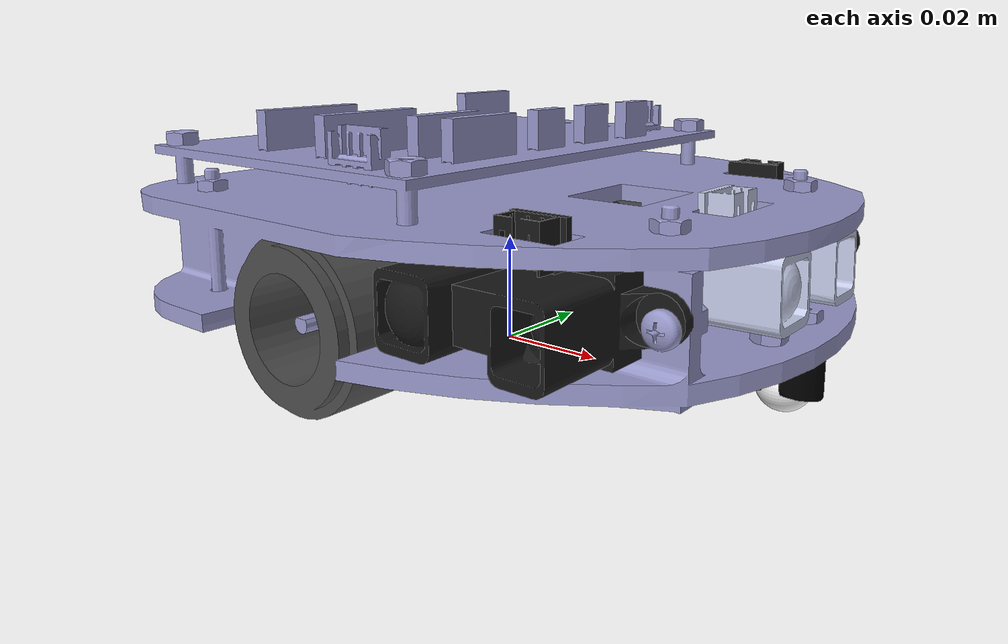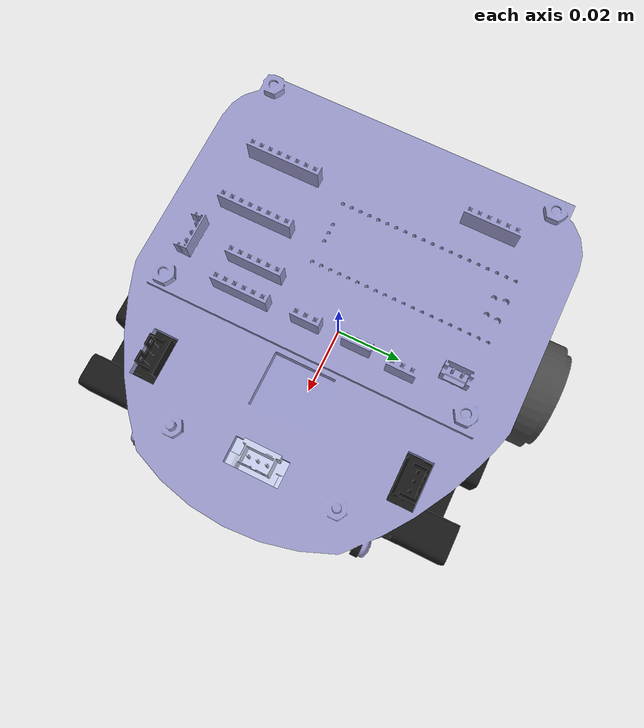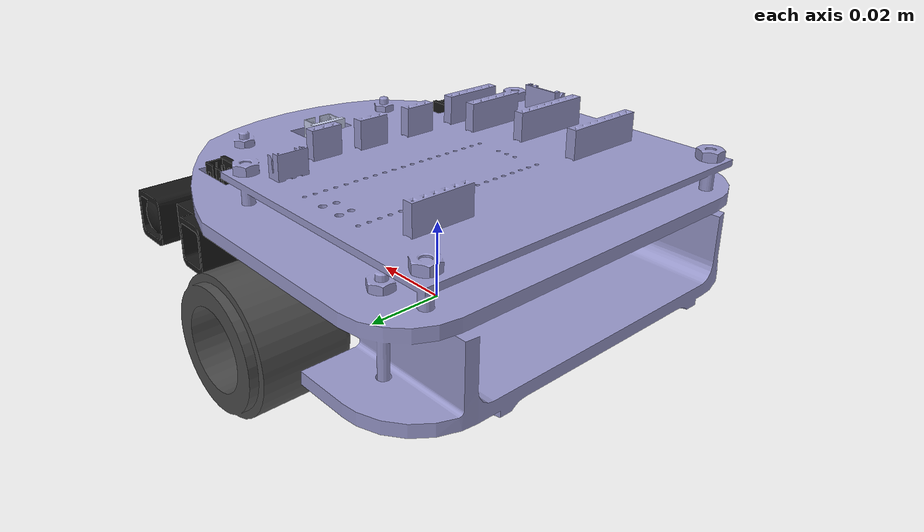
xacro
<?xml version="1.0"?>

<robot name="taurus" xmlns:xacro="http://ros.org/wiki/xacro">

  <!-- Init colour -->
  <material name="black">
      <color rgba="0.0 0.0 0.0 1.0"/>
  </material>

  <material name="dark">
    <color rgba="0.3 0.3 0.3 1.0"/>
  </material>

  <material name="light_black">
    <color rgba="0.4 0.4 0.4 1.0"/>
  </material>

  <material name="blue">
    <color rgba="0.0 0.0 0.8 1.0"/>
  </material>

  <material name="green">
    <color rgba="0.0 0.8 0.0 1.0"/>
  </material>

  <material name="grey">
    <color rgba="0.5 0.5 0.5 1.0"/>
  </material>

  <material name="orange">
    <color rgba="1.0 0.4235 0.0392 1.0"/>
  </material>

  <material name="brown">
    <color rgba="0.8706 0.8118 0.7647 1.0"/>
  </material>

  <material name="red">
    <color rgba="0.8 0.0 0.0 1.0"/>
  </material>

  <material name="white">
    <color rgba="1.0 1.0 1.0 1.0"/>
  </material>

  <link
    name="base_link">
    <inertial>
      <origin
        xyz="0.000110504329843525 -0.000171267807196562 0.0164534041997902"
        rpy="0 0 0" />
      <mass
        value="0.100894161837639" />
      <inertia
        ixx="0.0001"
        ixy="0"
        ixz="0"
        iyy="0.0003"
        iyz="0"
        izz="0.0002" />
    </inertial>
    <visual>
      <origin
        xyz="0 0 0"
        rpy="0 0 0" />
      <geometry>
        <mesh
          filename="package://taurus_description/meshes/base_link.STL" />
      </geometry>
      <material
        name="">
        <color
          rgba="0.6 0.6 0.8 0.94" />
      </material>
    </visual>
    <collision>
      <origin
        xyz="0 0 0"
        rpy="0 0 0" />
      <geometry>
        <mesh
          filename="package://taurus_description/meshes/base_link.STL" />
      </geometry>
    </collision>
  </link>

  <link name="base_footprint"/>

  <joint name="ground_joint" type="fixed">
    <parent link="base_footprint" />
    <child link = "base_link" />
    <origin xyz="0 0 0.005" rpy="0 0 0"/>
  </joint>

  <gazebo reference="base_link">
    <mu1>200</mu1>
    <mu2>200</mu2>
    <kp>1000000</kp>
    <kd>1</kd>
    <material>Gazebo/SkyBlue</material>
  </gazebo>

  <link
    name="rueda_derecha_link">
    <inertial>
      <origin
        xyz="1.72126556004931E-07 0.000106599449104558 -0.00113412741582314"
        rpy="0 0 0" />
      <mass
        value="0.08" />
      <inertia
        ixx="0.000002"
        ixy="0"
        ixz="0"
        iyy="0.000002"
        iyz="0"
        izz="0.00001" />
    </inertial>
    <visual>
      <origin
        xyz="0 0 0"
        rpy="0 0 0" />
      <geometry>
        <mesh
          filename="package://taurus_description/meshes/rueda_derecha_link.STL" />
      </geometry>
      <material
        name="">
        <color
          rgba="0.298039215686275 0.298039215686275 0.298039215686275 1" />
      </material>
    </visual>
    <collision>
      <origin
        xyz="0 0 0"
        rpy="0 0 0" />
      <geometry>
        <cylinder radius="0.015" length="0.016"/>
      </geometry>
    </collision>
  </link>
  <joint
    name="rueda_derecha_joint"
    type="continuous">
    <origin
      xyz="-0.0043022 -0.049462 0.0080355"
      rpy="-1.5723 0 0" />
    <parent
      link="base_link" />
    <child
      link="rueda_derecha_link" />
    <axis
      xyz="0 0 1" />
  </joint>

    <gazebo reference="rueda_derecha_link">
    <mu1>200</mu1>
    <mu2>200</mu2>
    <kp>1000000</kp>
    <kd>1</kd>
    <material>Gazebo/Black</material>
  </gazebo>

  <link
    name="rueda_izquierda_link">
    <inertial>
      <origin
        xyz="0.000104707279388615 -1.72015628169264E-06 0.00113430238217332"
        rpy="0 0 0" />
      <mass
        value="0.08" />
      <inertia
        ixx="0.000002"
        ixy="0"
        ixz="0"
        iyy="0.000002"
        iyz="0"
        izz="0.00001" />
    </inertial>
    <visual>
      <origin
        xyz="0 0 0"
        rpy="0 0 0" />
      <geometry>
        <mesh
          filename="package://taurus_description/meshes/rueda_izquierda_link.STL" />
      </geometry>
      <material
        name="">
        <color
          rgba="0.298039215686275 0.298039215686275 0.298039215686275 1" />
      </material>
    </visual>
    <collision>
      <origin
        xyz="0 0 0"
        rpy="0 0 0" />
      <geometry>
        <cylinder radius="0.015" length="0.016"/>
      </geometry>
    </collision>
  </link>
  <joint
    name="rueda_izquierda_joint"
    type="continuous">
    <origin
      xyz="-0.0043314 0.04838 0.0080163"
      rpy="-1.5723 0 0" />
    <parent
      link="base_link" />
    <child
      link="rueda_izquierda_link" />
    <axis
      xyz="0 0 1" />
  </joint>
   <gazebo reference="rueda_izquierda_link">
    <mu1>200</mu1>
    <mu2>200</mu2>
    <kp>1000000</kp>
    <kd>1</kd>
    <material>Gazebo/Black</material>
  </gazebo>

  <link
    name="base_castor_link">
    <inertial>
      <origin
        xyz="2.36675372452672E-05 0.000188155199999596 -0.000655761496261356"
        rpy="0 0 0" />
      <mass
        value="0.00033463" />
      <inertia
        ixx="0.00004"
        ixy="0"
        ixz="0"
        iyy="0.00004"
        iyz="0"
        izz="0.00001" />
    </inertial>
    <visual>
      <origin
        xyz="0 0 0"
        rpy="0 0 0" />
      <geometry>
        <mesh
          filename="package://taurus_description/meshes/base_castor_link.STL" />
      </geometry>
      <material
        name="">
        <color
          rgba="0 0 0 1" />
      </material>
    </visual>
    <collision>
      <origin
        xyz="0 0 0"
        rpy="0 0 0" />
      <geometry>
        <mesh
          filename="package://taurus_description/meshes/base_castor_link.STL" />
      </geometry>
    </collision>
  </link>
  <joint
    name="base_castor_joint"
    type="fixed">
    <origin
      xyz="0.05652 5.8287E-05 0.0034304"
      rpy="-0.0014807 0 0" />
    <parent
      link="base_link" />
    <child
      link="base_castor_link" />
    <axis
      xyz="0 0 0" />
  </joint>
    <gazebo reference="base_castor_link">
    <mu1>0.1</mu1>
    <mu2>0.1</mu2>
    <kp>1000000</kp>
    <kd>1</kd>
  </gazebo>

  <link
    name="ball_Link">
    <inertial>
      <origin
        xyz="0 0 5.55111512312578E-17"
        rpy="0 0 0" />
      <mass
        value="0.06" />
      <inertia
        ixx="0.00004"
        ixy="0"
        ixz="0"
        iyy="0.00004"
        iyz="0"
        izz="0.000001" />
    </inertial>
    <visual>
      <origin
        xyz="0 0 0"
        rpy="0 0 0" />
      <geometry>
        <mesh
          filename="package://taurus_description/meshes/ball_Link.STL" />
      </geometry>
      <material
        name="">
        <color
          rgba="1 1 1 1" />
      </material>
    </visual>
    <collision>
      <origin
        xyz="0 0 0"
        rpy="0 0 0" />
      <geometry>
        <sphere radius="0.005"/>
      </geometry>
    </collision>
  </link>
  <joint
    name="ball_joint"
    type="revolute">
    <origin
      xyz="-1.2745E-05 5.0515E-05 -0.0041208"
      rpy="-1.5708 0.022593 0" />
    <parent
      link="base_castor_link" />
    <child
      link="ball_Link" />
    <axis
      xyz="0 1 0" />
    <limit
      lower="0"
      upper="0"
      effort="0"
      velocity="0" />
  </joint>
  <gazebo reference="caster_ball_link">
    <mu1>0.1</mu1>
    <mu2>0.1</mu2>
    <kp>1000000</kp>
    <kd>1</kd>
  </gazebo>

  <link
    name="front_link">
    <inertial>
      <origin
        xyz="0.010059 -0.00088382 0.000124"
        rpy="0 0 0" />
      <mass
        value="0.00557152535083265" />
      <inertia
        ixx="5.64875978418685E-07"
        ixy="-1.58184844673073E-09"
        ixz="3.63584874588953E-08"
        iyy="6.47495103109609E-07"
        iyz="6.65120859251812E-10"
        izz="2.35917953578526E-07" />
    </inertial>
    <visual>
      <origin
        xyz="0 0 0"
        rpy="0 0 0" />
      <geometry>
        <mesh
          filename="package://taurus_description/meshes/scan_link.STL" />
      </geometry>
      <material
        name="">
        <color
          rgba="0.792156862745098 0.819607843137255 0.933333333333333 1" />
      </material>
    </visual>
    <collision>
      <origin
        xyz="0 0 0"
        rpy="0 0 0" />
      <geometry>
        <mesh
          filename="package://taurus_description/meshes/scan_link.STL" />
      </geometry>
    </collision>
  </link>
  <joint
    name="front_joint"
    type="fixed">
    <origin
      xyz="0.03982 9.4804E-05 0.016343"
      rpy="0 -0.0208 0" />
    <parent
      link="base_link" />
    <child
      link="front_link" />
    <axis
      xyz="0 0 0" />
  </joint>
  <link
    name="der_link">
    <inertial>
      <origin
        xyz="0.010059 -0.00088382 0.000124"
        rpy="0 0 0" />
      <mass
        value="0.00447834048846324" />
      <inertia
        ixx="9.32597625482861E-08"
        ixy="6.21089996882111E-09"
        ixz="4.80770767750181E-09"
        iyy="3.8251622391626E-07"
        iyz="-7.82785766002733E-11"
        izz="3.81164762413597E-07" />
    </inertial>
    <visual>
      <origin
        xyz="0 0 0"
        rpy="0 0 0" />
      <geometry>
        <mesh
          filename="package://taurus_description/meshes/scan_link.STL" />
      </geometry>
      <material
        name="">
        <color
          rgba="0.0980392156862745 0.0980392156862745 0.0980392156862745 1" />
      </material>
    </visual>
    <collision>
      <origin
        xyz="0 0 0"
        rpy="0 0 0" />
      <geometry>
        <mesh
          filename="package://taurus_description/meshes/scan_link.STL" />
      </geometry>
    </collision>
  </link>
  <joint
    name="der_joint"
    type="fixed">
    <origin
      xyz="0.3398E-01 -2.9804E-02 0.016343"
      rpy="0 0 -1.5723" />
    <parent
      link="base_link" />
    <child
      link="der_link" />
    <axis
      xyz="0 0 0" />
  </joint>
  <link
    name="izq_link">
    <inertial>
      <origin
        xyz="0.010059 -0.00088382 0.000124"
        rpy="0 0 0" />
      <mass
        value="0.00447834047903675" />
      <inertia
        ixx="9.31273703823107E-08"
        ixy="4.80794907961316E-09"
        ixz="5.15742601559754E-10"
        iyy="3.81164603005841E-07"
        iyz="1.09454363636539E-11"
        izz="3.82648773188072E-07" />
    </inertial>
    <visual>
      <origin
        xyz="0 0 0"
        rpy="0 0 0" />
      <geometry>
        <mesh
          filename="package://taurus_description/meshes/scan_link.STL" />
      </geometry>
      <material
        name="">
        <color
          rgba="0.0980392156862745 0.0980392156862745 0.0980392156862745 1" />
      </material>
    </visual>
    <collision>
      <origin
        xyz="0 0 0"
        rpy="0 0 0" />
      <geometry>
        <mesh
          filename="package://taurus_description/meshes/scan_link.STL" />
      </geometry>
    </collision>
  </link>
  <joint
    name="izq_joint"
    type="fixed">
    <origin
      xyz="0.3398E-01 2.9804E-02 0.016343"
      rpy="0 0 1.5723" />
    <parent
      link="base_link" />
    <child
      link="izq_link" />
    <axis
      xyz="0 0 0" />
  </joint>

  <!--LIDAR CONFIGURATION-->

  <gazebo reference="der_link">
    <sensor name="lidar" type="ray">

      <always_on>true</always_on>
      <visualize>true</visualize>
      <update_rate>10</update_rate>
      <ray>
        <scan>
          <horizontal>
            <samples>10</samples>
            <resolution>1</resolution>
            <min_angle>-0.57079</min_angle>
            <max_angle>0.57079</max_angle>
          </horizontal>
        </scan>
        <range>
          <min>0.05</min>
          <max>1.0</max>
          <resolution>0.2</resolution>
        </range>
        <noise>
          <type>gaussian</type>
          <mean>0.0</mean>
          <stddev>0.01</stddev>
        </noise>
      </ray>
      <plugin name="scan" filename="libgazebo_ros_ray_sensor.so">
        <ros>
          <remapping>~/out:=scan</remapping>
        </ros>
        <output_type>sensor_msgs/LaserScan</output_type>
        <frame_name>der_link</frame_name>
      </plugin>

    </sensor>
  </gazebo>
  <gazebo reference="der_link">
    <mu1>0.1</mu1>
    <mu2>0.1</mu2>
    <kp>100000</kp>
    <kd>1</kd>
    <material>Gazebo/Black</material>
  </gazebo>

  <gazebo reference="front_link">
    <sensor name="lidar1" type="ray">

      <always_on>true</always_on>
      <visualize>true</visualize>
      <update_rate>10</update_rate>
      <ray>
        <scan>
          <horizontal>
            <samples>10</samples>
            <resolution>1</resolution>
            <min_angle>-0.57079</min_angle>
            <max_angle>0.57079</max_angle>
          </horizontal>
        </scan>
        <range>
          <min>0.05</min>
          <max>1.0</max>
          <resolution>0.2</resolution>
        </range>
        <noise>
          <type>gaussian</type>
          <mean>0.0</mean>
          <stddev>0.01</stddev>
        </noise>
      </ray>
      <plugin name="scan1" filename="libgazebo_ros_ray_sensor.so">
        <ros>
          <remapping>~/out:=scan1</remapping>
        </ros>
        <output_type>sensor_msgs/LaserScan</output_type>
        <frame_name>front_link</frame_name>
      </plugin>

    </sensor>
  </gazebo>

  <gazebo reference="front_link">
    <mu1>0.1</mu1>
    <mu2>0.1</mu2>
    <kp>100000</kp>
    <kd>1</kd>
    <material>Gazebo/Black</material>
  </gazebo>

    <gazebo reference="izq_link">
    <sensor name="lidar2" type="ray">

      <always_on>true</always_on>
      <visualize>true</visualize>
      <update_rate>10</update_rate>
      <ray>
        <scan>
          <horizontal>
            <samples>10</samples>
            <resolution>1</resolution>
            <min_angle>-0.57079</min_angle>
            <max_angle>0.57079</max_angle>
          </horizontal>
        </scan>
        <range>
          <min>0.05</min>
          <max>1.0</max>
          <resolution>0.2</resolution>
        </range>
        <noise>
          <type>gaussian</type>
          <mean>0.0</mean>
          <stddev>0.01</stddev>
        </noise>
      </ray>
      <plugin name="scan2" filename="libgazebo_ros_ray_sensor.so">
        <ros>
          <remapping>~/out:=scan2</remapping>
        </ros>
        <output_type>sensor_msgs/LaserScan</output_type>
        <frame_name>izq_link</frame_name>
      </plugin>

    </sensor>
  </gazebo>

  <gazebo reference="izq_link">
    <mu1>0.1</mu1>
    <mu2>0.1</mu2>
    <kp>100000</kp>
    <kd>1</kd>
    <material>Gazebo/Black</material>
  </gazebo>

  <!--IMU sensor-->

  <gazebo reference="imu_link">
    <gravity>true</gravity>
    <sensor name="imu_sensor" type="imu">
      <always_on>true</always_on>
      <update_rate>100</update_rate>
      <visualize>true</visualize>
      <topic>imu_data</topic>
      <plugin filename="libgazebo_ros_imu_sensor.so" name="imu_plugin">
        <topicName>imu_data</topicName>
        <bodyName>imu_link</bodyName>
        <updateRateHZ>10.0</updateRateHZ>
        <gaussianNoise>0.03</gaussianNoise>
        <xyzOffset>0 0 0</xyzOffset>
        <rpyOffset>0 0 0</rpyOffset>
        <frameName>imu_link</frameName>
        <initialOrientationAsReference>true</initialOrientationAsReference>
      </plugin>
      <pose>0 0 0 0 0 0</pose>
    </sensor>
  </gazebo>

<gazebo>
    <plugin name="two_wheeled_robot_diff_drive" filename="libgazebo_ros_diff_drive.so">

      <update_rate>100</update_rate>

      <!-- wheels -->
      <left_joint>rueda_izquierda_joint</left_joint>
      <right_joint>rueda_derecha_joint</right_joint>

      <!-- kinematics -->
      <wheel_separation>0.07</wheel_separation>
      <wheel_diameter>0.030</wheel_diameter>

      <!-- limits -->
      <max_wheel_torque>20</max_wheel_torque>
      <max_wheel_acceleration>20.0</max_wheel_acceleration>

      <!-- Receive velocity commands on this ROS topic -->
      <command_topic>cmd_vel</command_topic>

      <!-- output -->
      <!-- When false, publish no wheel odometry data to a ROS topic -->
      <publish_odom>true</publish_odom>

      <!-- When true, publish coordinate transform from odom to base_footprint -->
      <!-- I usually use the robot_localization package to publish this transform -->
      <publish_odom_tf>false</publish_odom_tf>

      <!-- When true, publish coordinate transform from base_link to the wheels -->
      <!-- The robot_state_publisher package is often used to publish this transform -->
      <publish_wheel_tf>true</publish_wheel_tf>

      <odometry_topic>odom</odometry_topic>
      <odometry_frame>odom_link</odometry_frame>
      <robot_base_frame>base_footprint</robot_base_frame>

      <odometry_source>1</odometry_source>
      <ros>
        <remapping>odom:=wheel/odometry</remapping>
      </ros>
    </plugin>
  </gazebo>

  <gazebo>
    <plugin name="gazebo_ros_joint_state_publisher"
        filename="libgazebo_ros_joint_state_publisher.so">
        <update_rate>100</update_rate>
        <joint_name>ball_joint</joint_name>
    </plugin>
  </gazebo>

</robot>
